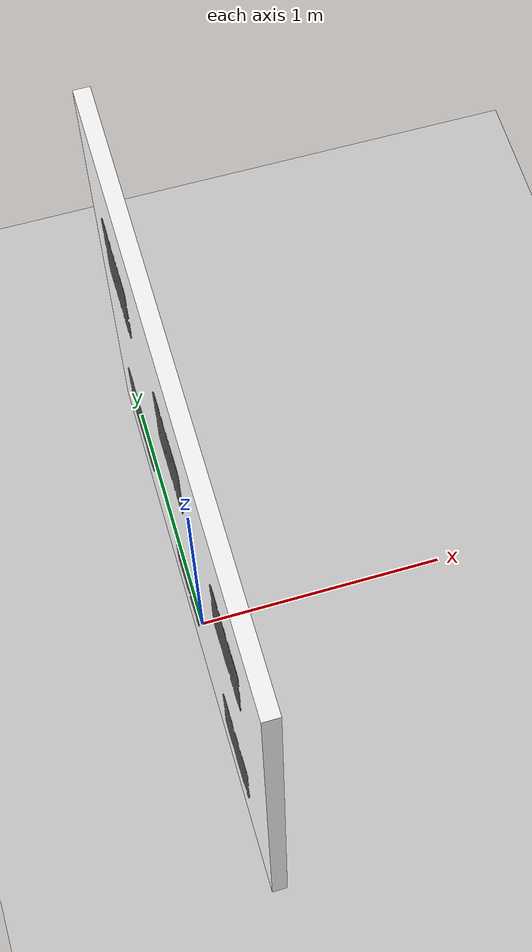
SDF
<?xml version="1.0"?>
<sdf version="1.6">
  <world name="qr_world">
    <physics name="default" type="ode">
      <max_step_size>0.001</max_step_size>
      <real_time_factor>1.0</real_time_factor>
      <real_time_update_rate>1000</real_time_update_rate>
    </physics>
    <scene>
      <ambient>0.65 0.65 0.65 1</ambient>
      <background>0.75 0.82 0.9 1</background>
      <shadows>true</shadows>
    </scene>

    <light name="sun" type="directional">
      <cast_shadows>true</cast_shadows>
      <pose>0 0 10 0 0 0</pose>
      <diffuse>0.8 0.8 0.8 1</diffuse>
      <specular>0.2 0.2 0.2 1</specular>
      <direction>-0.4 0.2 -0.9</direction>
    </light>

    <model name="ground_plane">
     <static>true</static>
     <link name="link">
      <collision name="collision">
       <geometry>
         <plane>
          <normal>0 0 1</normal>
          <size>100 100</size>
        </plane>
       </geometry>
      </collision>
     <visual name="visual">
       <geometry>
         <plane>
          <normal>0 0 1</normal>
          <size>100 100</size>
        </plane>
       </geometry>
       <material>
         <ambient>0.8 0.8 0.8 1</ambient>
         <diffuse>0.8 0.8 0.8 1</diffuse>
        </material>
      </visual>
    </link>
   </model>

    <!-- 二维码白板（来自 qr_whiteboard_portable） -->
    <include>
      <uri>model://qr_whiteboard</uri>
      <pose>0 0 1 0 0 0</pose>
    </include>

    <!-- 常用插件 -->
    <plugin
      filename="ignition-gazebo-physics-system"
      name="ignition::gazebo::systems::Physics">
    </plugin>
    <plugin
      filename="ignition-gazebo-user-commands-system"
      name="ignition::gazebo::systems::UserCommands">
    </plugin>
    <plugin
      filename="ignition-gazebo-scene-broadcaster-system"
      name="ignition::gazebo::systems::SceneBroadcaster">
    </plugin>
  </world>
</sdf>
